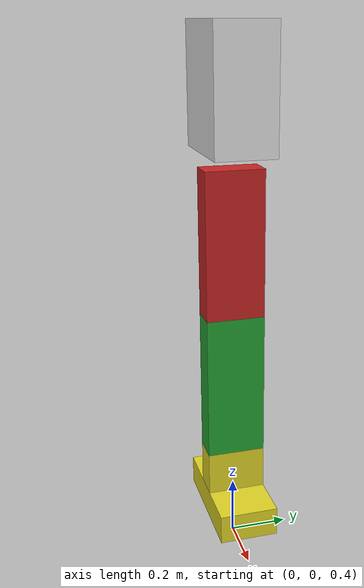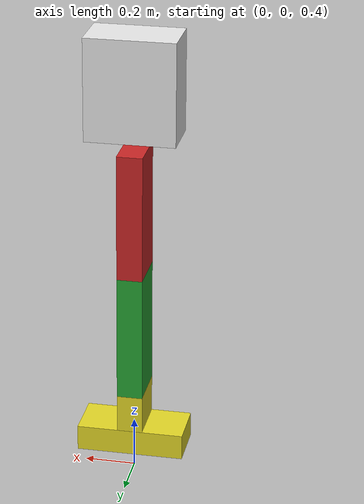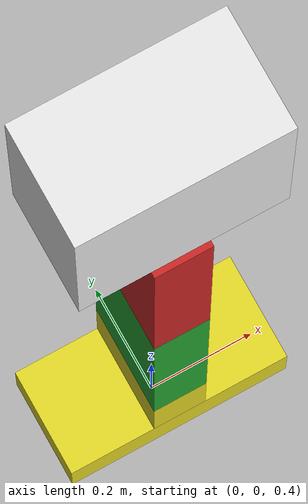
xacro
<?xml version="1.0"?>
<robot xmlns:xacro="http://www.ros.org/wiki/xacro" name="lookchoop">

    <xacro:include filename="inertial_macros.xacro" />
    <xacro:include filename="robot_params.xacro" />
    <xacro:include filename="robot_material.xacro" />
    <xacro:include filename="gazebo_full.xacro" />

    <!-- BASE LINK -->
    <link name="world"/>
    <joint name="world_to_base" type="fixed">
        <parent link="world"/>
        <child link="base_link"/>
        <origin xyz="0 0 2" rpy="0 0 0"/>
    </joint>

    <link name="base_link">
        <visual>
            <origin xyz="0 0 0"/>
            <geometry>
                <box size="${W_tt} ${Y} ${L_tt}"/>
            </geometry>
            <material name="white"/>
        </visual>
        <collision>
            <origin xyz="0 0 0"/>
            <geometry>
                <box size="${W_tt} ${Y} ${L_tt}"/>
            </geometry>
        </collision>
        <xacro:inertial_box mass="${mass_torso}" x="${W_tt}" y="${Y}" z="${L_tt}">
            <origin xyz="0 0 0" rpy="0 0 0"/>
        </xacro:inertial_box>
    </link>

    <joint name="joint_1" type="revolute">
        <parent link="base_link"/>
        <child link="th_link"/>
        <origin xyz="0 0 -${(L_tt/2)+L_td}" rpy="0 0 0"/>
        <axis xyz="0 1 0"/>
        <limit effort="5000" velocity="100" lower="${-PI}" upper="${PI}"/>
        <dynamics damping="${joint_damping}" friction="${joint_friction}"/>
    </joint>

    <link name="th_link">
        <visual>
            <origin xyz="0 0 -${L_th/2}"/>
            <geometry>
                <box size="${W_th} ${Y} ${L_th}"/>
            </geometry>
            <material name="red"/>
        </visual>
        <collision>
            <origin xyz="0 0 -${L_th/2}"/>
            <geometry>
                <box size="${W_th} ${Y} ${L_th}"/>
            </geometry>
        </collision>
        <xacro:inertial_box mass="${mass_thigh}" x="${W_th}" y="${Y}" z="${L_th}">
            <origin xyz="0 0 -${L_th/2}"/>
        </xacro:inertial_box>
    </link>

    <joint name="joint_2" type="revolute">
        <parent link="th_link"/>
        <child link="sh_link"/>
        <origin xyz="0 0 -${(L_th)}"/>
        <axis xyz="0 1 0"/>
        <limit effort="5000" velocity="100" lower="${-PI}" upper="${PI}"/>
        <dynamics damping="${joint_damping}" friction="${joint_friction}"/>
    </joint>

    <link name="sh_link">
        <visual>
            <origin xyz="0 0 -${L_sh/2}"/>
            <geometry>
                <box size="${W_sh} ${Y} ${L_sh}"/>
            </geometry>
            <material name="green"/>
        </visual>
        <collision>
            <origin xyz="0 0 -${L_sh/2}"/>
            <geometry>
                <box size="${W_sh} ${Y} ${L_sh}"/>
            </geometry>
        </collision>
        <xacro:inertial_box mass="${mass_shank}" x="${W_sh}" y="${Y}" z="${L_sh}">
            <origin xyz="0 0 -${L_sh/2}"/>
        </xacro:inertial_box>
    </link>

    <joint name="joint_3" type="revolute">
        <parent link="sh_link"/>
        <child link="fh_link"/>
        <origin xyz="0 0 -${(L_sh)}"/>
        <axis xyz="0 1 0"/>
        <limit effort="5000" velocity="100" lower="${-PI}" upper="${PI}"/>
        <dynamics damping="${joint_damping}" friction="${joint_friction}"/>
    </joint>

    <link name="fh_link">
        <visual>
            <origin xyz="0 0 -${(W_fh+W_fl)/2}"/>
            <geometry>
                <box size="${W_sh} ${Y} ${W_fh+W_fl}"/>
            </geometry>
            <material name="yellow"/>
        </visual>
        <collision>
            <origin xyz="0 0 -${(W_fh+W_fl)/2}"/>
            <geometry>
                <box size="${W_sh} ${Y} ${W_fh+W_fl}"/>
            </geometry>
        </collision>
        <xacro:inertial_box mass="${mass_foot*0.8}" x="${W_fh}" y="${Y}" z="${W_fh+W_fl}">
            <origin xyz="0 0 -${(W_fh+W_fl)/2}"/>
        </xacro:inertial_box>
    </link>

    <joint name="joint_3_1" type="fixed">
        <parent link="fh_link"/>
        <child link="fl_link"/>
        <origin xyz="0 0 -${(W_fh)}"/>
    </joint>

    <link name="fl_link">
        <visual>
            <origin xyz="0 0 -${(W_fh)}"/>
            <geometry>
                <box size="${L_fb + L_fm + L_ff} ${Y} ${W_fh}"/>
            </geometry>
            <material name="yellow"/>
        </visual>
        <collision>
            <origin xyz="0 0 -${(W_fh)}"/>
            <geometry>
                <box size="${L_fb + L_fm + L_ff} ${Y} ${W_fh}"/>
            </geometry>
        </collision>
        <xacro:inertial_box mass="${mass_foot*0.2}" x="${L_fb + L_fm + L_ff}" y="${Y}" z="${W_fh}">
            <origin xyz="0 0 -${(W_fh)}"/>
        </xacro:inertial_box>
    </link>

    <joint name="fh_link_to_contact" type="fixed">
        <parent link="fh_link"/>
        <child link="foot_contact"/>
        <origin xyz="0 0 -${(W_fh*2)+(W_fl)}"/>
    </joint>

    <link name="foot_contact">
        <visual>
            <origin xyz="0 0 0"/>
            <geometry>
                <sphere radius="0.01"/>
            </geometry>
            <material name="black"/>
        </visual>
    </link>

    <gazebo reference="base_link">
        <material>Gazebo/White</material>
    </gazebo>

</robot>

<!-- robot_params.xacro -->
<robot xmlns:xacro="http://www.ros.org/wiki/xacro" >
    <xacro:property name="PI" value="3.14159265359"/>
    <xacro:property name="Y" value="0.2"/>
    <xacro:property name="W_tt" value="0.35"/>
    <xacro:property name="L_tt" value="0.40"/>
    <xacro:property name="W_td" value="0.05"/>
    <xacro:property name="L_td" value="0.05"/>
    <xacro:property name="W_th" value="0.10"/>
    <xacro:property name="L_th" value="0.50"/>
    <xacro:property name="W_sh" value="0.10"/>
    <xacro:property name="L_sh" value="0.50"/>
    <xacro:property name="W_fh" value="0.10"/>
    <xacro:property name="W_fl" value="0.05"/>
    <xacro:property name="L_fb" value="0.10"/>
    <xacro:property name="L_fm" value="0.20"/>
    <xacro:property name="L_ff" value="0.12"/>
    <xacro:property name="W_t" value="0.05"/>
    <xacro:property name="L_t" value="0.15"/>
    <xacro:property name="T_t" value="0.20"/>
    <xacro:property name="T_oo" value="0.15"/>

    <xacro:property name="mass_torso" value="0.8"/>
    <xacro:property name="mass_thigh" value="0.835"/>
    <xacro:property name="mass_shank" value="0.501"/>
    <xacro:property name="mass_foot" value="0.159"/>
    <xacro:property name="mass_toe" value="0.49"/>

    <xacro:property name="joint_damping" value="0.1"/>
    <xacro:property name="joint_friction" value="0.05"/>
</robot>
